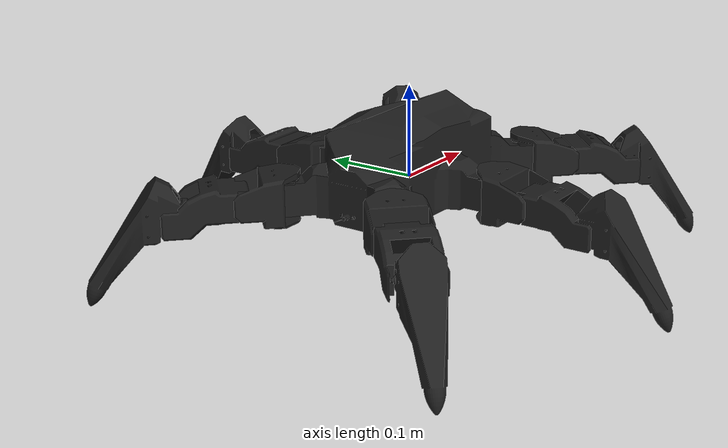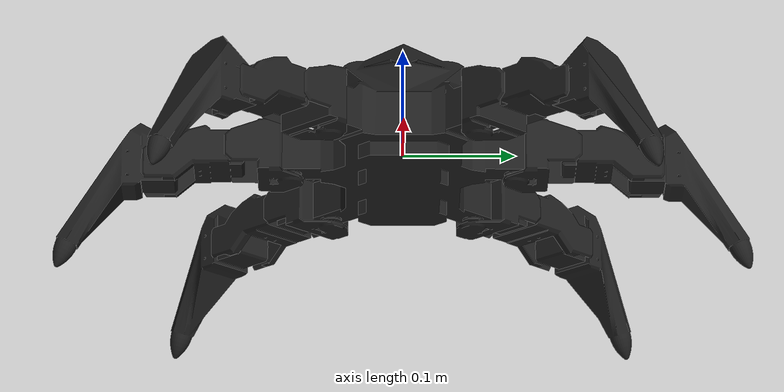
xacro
<?xml version="1.0"?>
<robot name="pxmark4s" xmlns:xacro="http://ros.org/wiki/xacro">

  <xacro:arg name="robot_name" default = "pxmark4s"/>
  <xacro:arg name="external_urdf_loc" default=""/>
  <xacro:arg name="load_gazebo_configs" default="false"/>

  <xacro:property name="urdf_loc" value="$(arg external_urdf_loc)"/>

  <xacro:if value="$(arg load_gazebo_configs)">
    <xacro:include filename="$(find interbotix_xshexapod_gazebo)/config/interbotix_texture.gazebo"/>
  </xacro:if>

  <material name="interbotix_black">
    <texture filename="package://interbotix_xshexapod_descriptions/meshes/interbotix_black.png"/>
  </material>

  <xacro:macro name="leg" params="robot_name prefix x y yaw">

    <joint name="${prefix}_coxa" type="revolute">
      <axis xyz="0 0 1"/>
      <limit effort="3" lower="${radians(-55)}" upper="${radians(55)}" velocity="${pi}"/>
      <origin rpy="0 0 ${yaw}" xyz="${x} ${y} 0"/>
      <parent link="${robot_name}/base_link"/>
      <child link="${robot_name}/${prefix}_coxa_link"/>
    </joint>

    <transmission name="trans_${prefix}_coxa">
      <type>transmission_interface/SimpleTransmission</type>
      <joint name="${prefix}_coxa">
        <hardwareInterface>hardware_interface/EffortJointInterface</hardwareInterface>
      </joint>
      <actuator name="${prefix}_coxa_motor">
        <mechanicalReduction>1</mechanicalReduction>
      </actuator>
    </transmission>

    <link name="${robot_name}/${prefix}_coxa_link">
      <visual>
        <origin rpy="0 0 0" xyz="0 0 0"/>
        <geometry>
          <mesh filename="package://interbotix_xshexapod_descriptions/meshes/pxmark4s_meshes/pxmark4s_coxa_link.stl" scale="0.001 0.001 0.001"/>
        </geometry>
        <material name="interbotix_black"/>
      </visual>
      <collision>
        <origin rpy="0 0 0" xyz="0 0 0"/>
        <geometry>
          <mesh filename="package://interbotix_xshexapod_descriptions/meshes/pxmark4s_meshes/pxmark4s_coxa_link.stl" scale="0.001 0.001 0.001"/>
        </geometry>
      </collision>
      <inertial>
        <origin rpy="0 0 0" xyz="0.019066 -0.000002 0.006577"/>
        <mass value="0.02471" />
        <inertia ixx="0.0000215400" iyy="0.00002657000" izz="0.00002925000" ixy="-0.00000000122" ixz="-0.00000192741" iyz="-0.00000000001" />
      </inertial>
    </link>

    <joint name="${prefix}_femur" type="revolute">
      <axis xyz="0 1 0"/>
      <limit effort="3" lower="${radians(-98)}" upper="${radians(90)}" velocity="${pi}"/>
      <origin rpy="0 0 0" xyz="0.052907539 0 0"/>
      <parent link="${robot_name}/${prefix}_coxa_link"/>
      <child link="${robot_name}/${prefix}_femur_link"/>
    </joint>

    <transmission name="trans_${prefix}_femur">
      <type>transmission_interface/SimpleTransmission</type>
      <joint name="${prefix}_femur">
        <hardwareInterface>hardware_interface/EffortJointInterface</hardwareInterface>
      </joint>
      <actuator name="${prefix}_femur_motor">
        <mechanicalReduction>1</mechanicalReduction>
      </actuator>
    </transmission>

    <link name="${robot_name}/${prefix}_femur_link">
      <visual>
        <origin rpy="0 0 0" xyz="0 0 0"/>
        <geometry>
          <mesh filename="package://interbotix_xshexapod_descriptions/meshes/pxmark4s_meshes/pxmark4s_femur_link.stl" scale="0.001 0.001 0.001"/>
        </geometry>
        <material name="interbotix_black"/>
      </visual>
      <collision>
        <origin rpy="0 0 0" xyz="0 0 0"/>
        <geometry>
          <mesh filename="package://interbotix_xshexapod_descriptions/meshes/pxmark4s_meshes/pxmark4s_femur_link.stl" scale="0.001 0.001 0.001"/>
        </geometry>
      </collision>
      <inertial>
        <origin rpy="0 0 0" xyz="0.019579 -0.000301 -0.000582"/>
        <mass value="0.092834" />
        <inertia ixx="0.0000300200" iyy="0.0000776600" izz="0.0000896200" ixy="0.0000002711" ixz="0.0000048494" iyz="0.0000000003" />
      </inertial>
    </link>

    <joint name="${prefix}_tibia" type="revolute">
      <axis xyz="0 1 0"/>
      <limit effort="3" lower="${radians(-45)}" upper="${radians(125)}" velocity="${pi}"/>
      <origin rpy="0 0 0" xyz="0.06 0 -0.015"/>
      <parent link="${robot_name}/${prefix}_femur_link"/>
      <child link="${robot_name}/${prefix}_tibia_link"/>
    </joint>

    <transmission name="trans_${prefix}_tibia">
      <type>transmission_interface/SimpleTransmission</type>
      <joint name="${prefix}_tibia">
        <hardwareInterface>hardware_interface/EffortJointInterface</hardwareInterface>
      </joint>
      <actuator name="${prefix}_tibia_motor">
        <mechanicalReduction>1</mechanicalReduction>
      </actuator>
    </transmission>

    <link name="${robot_name}/${prefix}_tibia_link">
      <visual>
        <origin rpy="0 0 0" xyz="0 0 0"/>
        <geometry>
          <mesh filename="package://interbotix_xshexapod_descriptions/meshes/pxmark4s_meshes/pxmark4s_tibia_link.stl" scale="0.001 0.001 0.001"/>
        </geometry>
        <material name="interbotix_black"/>
      </visual>
      <collision>
        <origin rpy="0 0 0" xyz="0 0 0"/>
        <geometry>
          <mesh filename="package://interbotix_xshexapod_descriptions/meshes/pxmark4s_meshes/pxmark4s_tibia_link.stl" scale="0.001 0.001 0.001"/>
        </geometry>
      </collision>
      <inertial>
        <origin rpy="0 0 0" xyz="0.035812 0.000035 -0.011522"/>
        <mass value="0.178825" />
        <inertia ixx="0.0001773000" iyy="0.0005185000" izz="0.0003797000" ixy="-0.0000014230" ixz="0.0001789000" iyz="0.0000006181" />
      </inertial>
    </link>

    <joint name="${prefix}_foot" type="fixed">
      <origin rpy="0 0 0" xyz="0.095 0 -0.09"/>
      <parent link="${robot_name}/${prefix}_tibia_link"/>
      <child link="${robot_name}/${prefix}_foot_link"/>
    </joint>

    <link name="${robot_name}/${prefix}_foot_link"/>

  </xacro:macro>

  <link name="$(arg robot_name)/base_link">
    <visual>
      <origin rpy="0 0 0" xyz="0 0 0"/>
      <geometry>
        <mesh filename="package://interbotix_xshexapod_descriptions/meshes/pxmark4s_meshes/pxmark4s_base_link.stl" scale="0.001 0.001 0.001"/>
      </geometry>
      <material name="interbotix_black"/>
    </visual>
    <collision>
      <origin rpy="0 0 0" xyz="0 0 0"/>
      <geometry>
        <mesh filename="package://interbotix_xshexapod_descriptions/meshes/pxmark4s_meshes/pxmark4s_base_link.stl" scale="0.001 0.001 0.001"/>
      </geometry>
    </collision>
    <inertial>
      <origin rpy="0 0 0" xyz="0.001481 0.000294 0.014944"/>
      <mass value="1.564057" />
      <inertia ixx="0.0046750000" iyy="0.0088790000" izz="0.0097940000" ixy="0.0000076888" ixz="-0.0001245000" iyz="0.0000050996" />
    </inertial>
  </link>

  <joint name="base_bottom" type="fixed">
    <origin rpy="0 0 0" xyz="0 0 -0.033"/>
    <parent link="$(arg robot_name)/base_link"/>
    <child link="$(arg robot_name)/base_bottom_link"/>
  </joint>

  <link name="$(arg robot_name)/base_bottom_link">
  </link>

  <xacro:leg robot_name="$(arg robot_name)" prefix="right_front" x="0.125" y="-0.065" yaw="${-pi/4}"/>
  <xacro:leg robot_name="$(arg robot_name)" prefix="right_middle" x="0" y="-0.1" yaw="${-pi/2}"/>
  <xacro:leg robot_name="$(arg robot_name)" prefix="right_back" x="-0.125" y="-0.065" yaw="${-3*pi/4}"/>
  <xacro:leg robot_name="$(arg robot_name)" prefix="left_front" x="0.125" y="0.065" yaw="${pi/4}"/>
  <xacro:leg robot_name="$(arg robot_name)" prefix="left_middle" x="0" y="0.1" yaw="${pi/2}"/>
  <xacro:leg robot_name="$(arg robot_name)" prefix="left_back" x="-0.125" y="0.065" yaw="${3*pi/4}"/>

  <xacro:if value="${urdf_loc != ''}">
    <xacro:include filename="${urdf_loc}"/>
  </xacro:if>

</robot>
